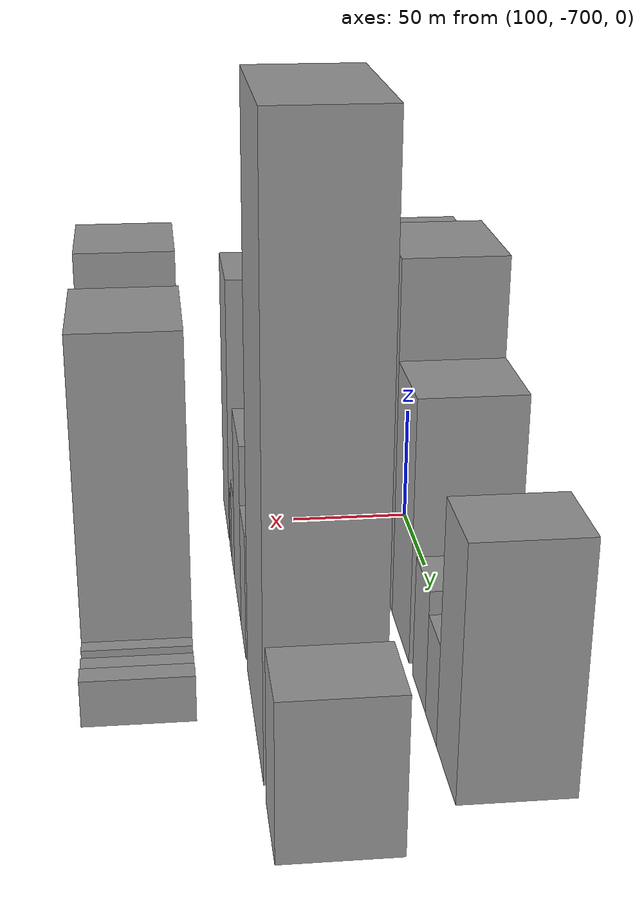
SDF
<sdf version="1.6">
 <world name="default">
  <model name="building_7">
   <static>1</static>
   <pose>100.0000 -691.8284 0 0.000000 0.000000 0.000000</pose>
   <link name="link">
    <pose>0 0 66.00 0 0 0</pose>
    <collision name="collision"><geometry><box><size>40.0000 50.6814 132.0000</size></box></geometry></collision>
    <visual name="visual">
     <cast_shadows>0</cast_shadows>
     <geometry><box><size>40.0000 50.6814 132.0000</size></box></geometry>
     <material>
      <script>
       <uri>model://grey_wall/materials/scripts</uri>
       <uri>model://grey_wall/materials/textures</uri>
       <name>vrc/grey_wall</name>
      </script>
     </material>
    </visual>
   </link>
  </model>
  <model name="building_8">
   <static>1</static>
   <pose>100.0000 -636.6558 0 0.000000 0.000000 0.000000</pose>
   <link name="link">
    <pose>0 0 72.00 0 0 0</pose>
    <collision name="collision"><geometry><box><size>40.0000 51.6640 144.0000</size></box></geometry></collision>
    <visual name="visual">
     <cast_shadows>0</cast_shadows>
     <geometry><box><size>40.0000 51.6640 144.0000</size></box></geometry>
     <material>
      <script>
       <uri>model://grey_wall/materials/scripts</uri>
       <uri>model://grey_wall/materials/textures</uri>
       <name>vrc/grey_wall</name>
      </script>
     </material>
    </visual>
   </link>
  </model>
  <model name="building_9">
   <static>1</static>
   <pose>100.0000 -591.2603 0 0.000000 0.000000 0.000000</pose>
   <link name="link">
    <pose>0 0 52.50 0 0 0</pose>
    <collision name="collision"><geometry><box><size>40.0000 39.1270 105.0000</size></box></geometry></collision>
    <visual name="visual">
     <cast_shadows>0</cast_shadows>
     <geometry><box><size>40.0000 39.1270 105.0000</size></box></geometry>
     <material>
      <script>
       <uri>model://grey_wall/materials/scripts</uri>
       <uri>model://grey_wall/materials/textures</uri>
       <name>vrc/grey_wall</name>
      </script>
     </material>
    </visual>
   </link>
  </model>
  <model name="building_10">
   <static>1</static>
   <pose>100.0000 -550.6019 0 0.000000 0.000000 0.000000</pose>
   <link name="link">
    <pose>0 0 24.00 0 0 0</pose>
    <collision name="collision"><geometry><box><size>40.0000 26.1898 48.0000</size></box></geometry></collision>
    <visual name="visual">
     <cast_shadows>0</cast_shadows>
     <geometry><box><size>40.0000 26.1898 48.0000</size></box></geometry>
     <material>
      <script>
       <uri>model://grey_wall/materials/scripts</uri>
       <uri>model://grey_wall/materials/textures</uri>
       <name>vrc/grey_wall</name>
      </script>
     </material>
    </visual>
   </link>
  </model>
  <model name="building_11">
   <static>1</static>
   <pose>100.0000 -526.9672 0 0.000000 0.000000 0.000000</pose>
   <link name="link">
    <pose>0 0 19.50 0 0 0</pose>
    <collision name="collision"><geometry><box><size>40.0000 21.0796 39.0000</size></box></geometry></collision>
    <visual name="visual">
     <cast_shadows>0</cast_shadows>
     <geometry><box><size>40.0000 21.0796 39.0000</size></box></geometry>
     <material>
      <script>
       <uri>model://grey_wall/materials/scripts</uri>
       <uri>model://grey_wall/materials/textures</uri>
       <name>vrc/grey_wall</name>
      </script>
     </material>
    </visual>
   </link>
  </model>
  <model name="building_12">
   <static>1</static>
   <pose>100.0000 -499.6804 0 0.000000 0.000000 0.000000</pose>
   <link name="link">
    <pose>0 0 46.50 0 0 0</pose>
    <collision name="collision"><geometry><box><size>40.0000 33.4940 93.0000</size></box></geometry></collision>
    <visual name="visual">
     <cast_shadows>0</cast_shadows>
     <geometry><box><size>40.0000 33.4940 93.0000</size></box></geometry>
     <material>
      <script>
       <uri>model://grey_wall/materials/scripts</uri>
       <uri>model://grey_wall/materials/textures</uri>
       <name>vrc/grey_wall</name>
      </script>
     </material>
    </visual>
   </link>
  </model>
  <model name="building_57">
   <static>1</static>
   <pose>160.0000 -702.6959 0 0.000000 0.000000 0.000000</pose>
   <link name="link">
    <pose>0 0 58.50 0 0 0</pose>
    <collision name="collision"><geometry><box><size>40.0000 41.9616 117.0000</size></box></geometry></collision>
    <visual name="visual">
     <cast_shadows>0</cast_shadows>
     <geometry><box><size>40.0000 41.9616 117.0000</size></box></geometry>
     <material>
      <script>
       <uri>model://grey_wall/materials/scripts</uri>
       <uri>model://grey_wall/materials/textures</uri>
       <name>vrc/grey_wall</name>
      </script>
     </material>
    </visual>
   </link>
  </model>
  <model name="building_58">
   <static>1</static>
   <pose>160.0000 -670.9258 0 0.000000 0.000000 0.000000</pose>
   <link name="link">
    <pose>0 0 13.50 0 0 0</pose>
    <collision name="collision"><geometry><box><size>40.0000 11.5786 27.0000</size></box></geometry></collision>
    <visual name="visual">
     <cast_shadows>0</cast_shadows>
     <geometry><box><size>40.0000 11.5786 27.0000</size></box></geometry>
     <material>
      <script>
       <uri>model://grey_wall/materials/scripts</uri>
       <uri>model://grey_wall/materials/textures</uri>
       <name>vrc/grey_wall</name>
      </script>
     </material>
    </visual>
   </link>
  </model>
  <model name="building_59">
   <static>1</static>
   <pose>160.0000 -655.6511 0 0.000000 0.000000 0.000000</pose>
   <link name="link">
    <pose>0 0 18.00 0 0 0</pose>
    <collision name="collision"><geometry><box><size>40.0000 18.9706 36.0000</size></box></geometry></collision>
    <visual name="visual">
     <cast_shadows>0</cast_shadows>
     <geometry><box><size>40.0000 18.9706 36.0000</size></box></geometry>
     <material>
      <script>
       <uri>model://grey_wall/materials/scripts</uri>
       <uri>model://grey_wall/materials/textures</uri>
       <name>vrc/grey_wall</name>
      </script>
     </material>
    </visual>
   </link>
  </model>
  <model name="building_60">
   <static>1</static>
   <pose>160.0000 -626.6289 0 0.000000 0.000000 0.000000</pose>
   <link name="link">
    <pose>0 0 37.50 0 0 0</pose>
    <collision name="collision"><geometry><box><size>40.0000 39.0739 75.0000</size></box></geometry></collision>
    <visual name="visual">
     <cast_shadows>0</cast_shadows>
     <geometry><box><size>40.0000 39.0739 75.0000</size></box></geometry>
     <material>
      <script>
       <uri>model://grey_wall/materials/scripts</uri>
       <uri>model://grey_wall/materials/textures</uri>
       <name>vrc/grey_wall</name>
      </script>
     </material>
    </visual>
   </link>
  </model>
  <model name="building_61">
   <static>1</static>
   <pose>160.0000 -593.7699 0 0.000000 0.000000 0.000000</pose>
   <link name="link">
    <pose>0 0 25.50 0 0 0</pose>
    <collision name="collision"><geometry><box><size>40.0000 26.6440 51.0000</size></box></geometry></collision>
    <visual name="visual">
     <cast_shadows>0</cast_shadows>
     <geometry><box><size>40.0000 26.6440 51.0000</size></box></geometry>
     <material>
      <script>
       <uri>model://grey_wall/materials/scripts</uri>
       <uri>model://grey_wall/materials/textures</uri>
       <name>vrc/grey_wall</name>
      </script>
     </material>
    </visual>
   </link>
  </model>
  <model name="building_62">
   <static>1</static>
   <pose>160.0000 -536.2307 0 0.000000 0.000000 0.000000</pose>
   <link name="link">
    <pose>0 0 109.50 0 0 0</pose>
    <collision name="collision"><geometry><box><size>40.0000 72.4344 219.0000</size></box></geometry></collision>
    <visual name="visual">
     <cast_shadows>0</cast_shadows>
     <geometry><box><size>40.0000 72.4344 219.0000</size></box></geometry>
     <material>
      <script>
       <uri>model://grey_wall/materials/scripts</uri>
       <uri>model://grey_wall/materials/textures</uri>
       <name>vrc/grey_wall</name>
      </script>
     </material>
    </visual>
   </link>
  </model>
  <model name="building_63">
   <static>1</static>
   <pose>160.0000 -474.3768 0 0.000000 0.000000 0.000000</pose>
   <link name="link">
    <pose>0 0 28.50 0 0 0</pose>
    <collision name="collision"><geometry><box><size>40.0000 31.2733 57.0000</size></box></geometry></collision>
    <visual name="visual">
     <cast_shadows>0</cast_shadows>
     <geometry><box><size>40.0000 31.2733 57.0000</size></box></geometry>
     <material>
      <script>
       <uri>model://grey_wall/materials/scripts</uri>
       <uri>model://grey_wall/materials/textures</uri>
       <name>vrc/grey_wall</name>
      </script>
     </material>
    </visual>
   </link>
  </model>
  <model name="building_106">
   <static>1</static>
   <pose>220.0000 -695.8119 0 0.000000 0.000000 0.000000</pose>
   <link name="link">
    <pose>0 0 66.00 0 0 0</pose>
    <collision name="collision"><geometry><box><size>40.0000 45.7659 132.0000</size></box></geometry></collision>
    <visual name="visual">
     <cast_shadows>0</cast_shadows>
     <geometry><box><size>40.0000 45.7659 132.0000</size></box></geometry>
     <material>
      <script>
       <uri>model://grey_wall/materials/scripts</uri>
       <uri>model://grey_wall/materials/textures</uri>
       <name>vrc/grey_wall</name>
      </script>
     </material>
    </visual>
   </link>
  </model>
  <model name="building_107">
   <static>1</static>
   <pose>220.0000 -656.1597 0 0.000000 0.000000 0.000000</pose>
   <link name="link">
    <pose>0 0 33.00 0 0 0</pose>
    <collision name="collision"><geometry><box><size>40.0000 33.5384 66.0000</size></box></geometry></collision>
    <visual name="visual">
     <cast_shadows>0</cast_shadows>
     <geometry><box><size>40.0000 33.5384 66.0000</size></box></geometry>
     <material>
      <script>
       <uri>model://grey_wall/materials/scripts</uri>
       <uri>model://grey_wall/materials/textures</uri>
       <name>vrc/grey_wall</name>
      </script>
     </material>
    </visual>
   </link>
  </model>
  <model name="building_108">
   <static>1</static>
   <pose>220.0000 -628.2798 0 0.000000 0.000000 0.000000</pose>
   <link name="link">
    <pose>0 0 7.50 0 0 0</pose>
    <collision name="collision"><geometry><box><size>40.0000 6.2212 15.0000</size></box></geometry></collision>
    <visual name="visual">
     <cast_shadows>0</cast_shadows>
     <geometry><box><size>40.0000 6.2212 15.0000</size></box></geometry>
     <material>
      <script>
       <uri>model://grey_wall/materials/scripts</uri>
       <uri>model://grey_wall/materials/textures</uri>
       <name>vrc/grey_wall</name>
      </script>
     </material>
    </visual>
   </link>
  </model>
  <model name="building_109">
   <static>1</static>
   <pose>220.0000 -598.9357 0 0.000000 0.000000 0.000000</pose>
   <link name="link">
    <pose>0 0 66.00 0 0 0</pose>
    <collision name="collision"><geometry><box><size>40.0000 52.4671 132.0000</size></box></geometry></collision>
    <visual name="visual">
     <cast_shadows>0</cast_shadows>
     <geometry><box><size>40.0000 52.4671 132.0000</size></box></geometry>
     <material>
      <script>
       <uri>model://grey_wall/materials/scripts</uri>
       <uri>model://grey_wall/materials/textures</uri>
       <name>vrc/grey_wall</name>
      </script>
     </material>
    </visual>
   </link>
  </model>
  <model name="building_110">
   <static>1</static>
   <pose>220.0000 -569.5650 0 0.000000 0.000000 0.000000</pose>
   <link name="link">
    <pose>0 0 7.50 0 0 0</pose>
    <collision name="collision"><geometry><box><size>40.0000 6.2743 15.0000</size></box></geometry></collision>
    <visual name="visual">
     <cast_shadows>0</cast_shadows>
     <geometry><box><size>40.0000 6.2743 15.0000</size></box></geometry>
     <material>
      <script>
       <uri>model://grey_wall/materials/scripts</uri>
       <uri>model://grey_wall/materials/textures</uri>
       <name>vrc/grey_wall</name>
      </script>
     </material>
    </visual>
   </link>
  </model>
  <model name="building_111">
   <static>1</static>
   <pose>220.0000 -557.8198 0 0.000000 0.000000 0.000000</pose>
   <link name="link">
    <pose>0 0 7.50 0 0 0</pose>
    <collision name="collision"><geometry><box><size>40.0000 7.2162 15.0000</size></box></geometry></collision>
    <visual name="visual">
     <cast_shadows>0</cast_shadows>
     <geometry><box><size>40.0000 7.2162 15.0000</size></box></geometry>
     <material>
      <script>
       <uri>model://grey_wall/materials/scripts</uri>
       <uri>model://grey_wall/materials/textures</uri>
       <name>vrc/grey_wall</name>
      </script>
     </material>
    </visual>
   </link>
  </model>
  <model name="building_112">
   <static>1</static>
   <pose>220.0000 -544.7595 0 0.000000 0.000000 0.000000</pose>
   <link name="link">
    <pose>0 0 9.00 0 0 0</pose>
    <collision name="collision"><geometry><box><size>40.0000 8.9043 18.0000</size></box></geometry></collision>
    <visual name="visual">
     <cast_shadows>0</cast_shadows>
     <geometry><box><size>40.0000 8.9043 18.0000</size></box></geometry>
     <material>
      <script>
       <uri>model://grey_wall/materials/scripts</uri>
       <uri>model://grey_wall/materials/textures</uri>
       <name>vrc/grey_wall</name>
      </script>
     </material>
    </visual>
   </link>
  </model>
 </world>
</sdf>
